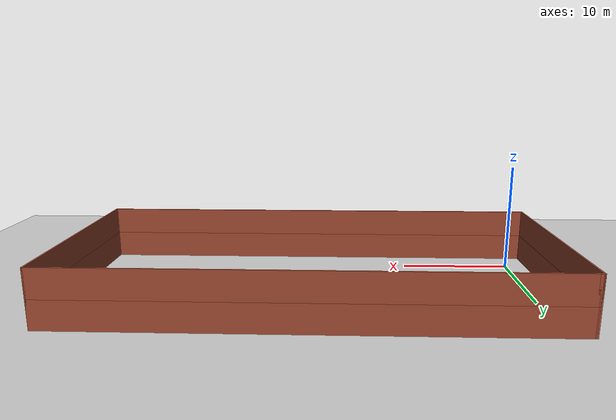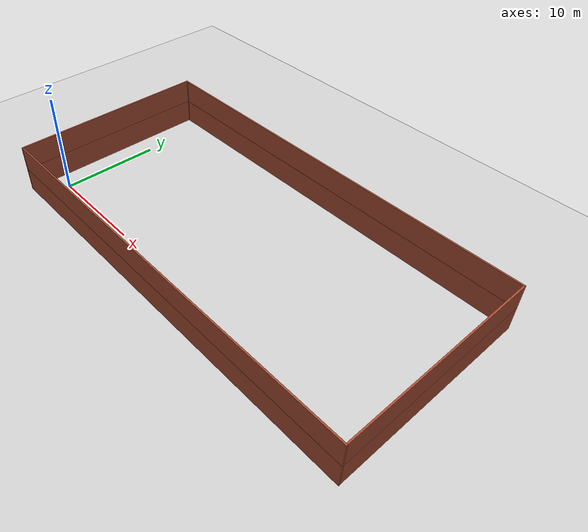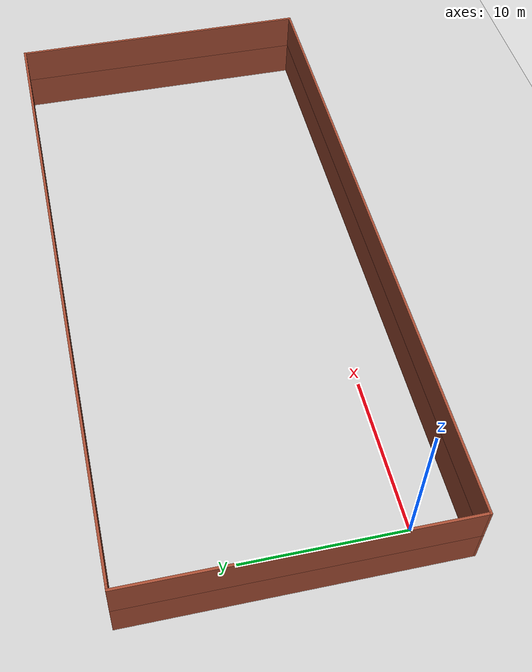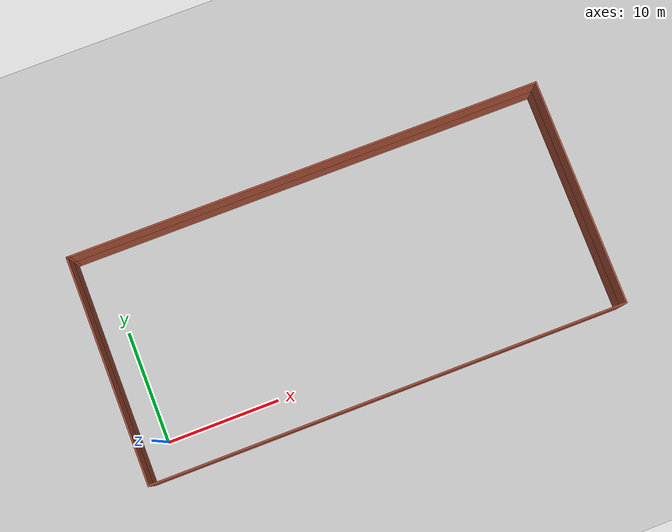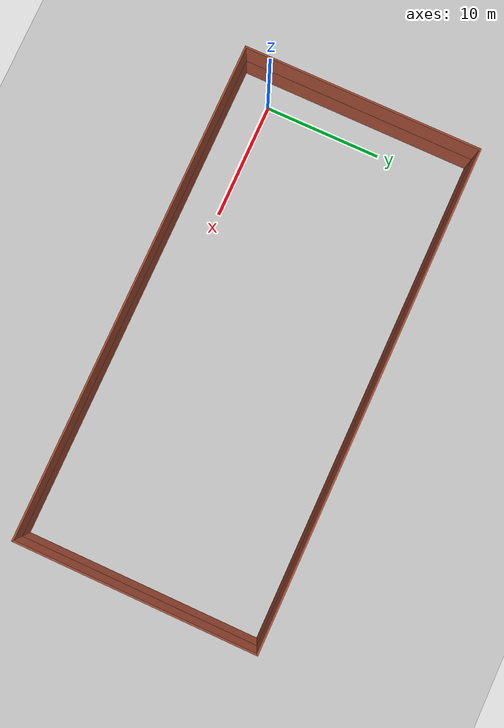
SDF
<sdf version="1.6">
 <world name="default">
  <light name="sun" type="directional">
   <pose>0 0 10 0 -0 0</pose>
   <diffuse>0.8 0.8 0.8 1</diffuse>
   <specular>0.1 0.1 0.1 1</specular>
   <attenuation>
    <range>1000</range>
    <constant>0.9</constant>
    <linear>0.01</linear>
    <quadratic>0.001</quadratic>
   </attenuation>
   <direction>-0.5 0.5 -1</direction>
  </light>
  <model name="ground_plane">
   <static>1</static>
   <link name="link">
    <collision name="collision">
     <geometry><plane><normal>0 0 1</normal><size>100 100</size></plane></geometry>
     <surface><friction><ode><mu>100</mu><mu2>50</mu2></ode></friction></surface>
    </collision>
    <visual name="visual">
     <cast_shadows>0</cast_shadows>
     <geometry><plane><normal>0 0 1</normal><size>100 100</size></plane></geometry>
     <material>
      <script><uri>file://media/materials/scripts/gazebo.material</uri><name>Gazebo/Grey</name></script>
     </material>
    </visual>
   </link>
  </model>
  <gravity>0 0 -9.8</gravity>
  <magnetic_field>6e-06 2.3e-05 -4.2e-05</magnetic_field>
  <atmosphere type="adiabatic"/>
  <physics name="default_physics" default="0" type="ode">
   <max_step_size>0.001</max_step_size>
   <real_time_factor>1</real_time_factor>
   <real_time_update_rate>1000</real_time_update_rate>
  </physics>
  <scene><ambient>0.4 0.4 0.4 1</ambient><background>0.7 0.7 0.7 1</background><shadows>1</shadows></scene>
  <spherical_coordinates>
   <surface_model>EARTH_WGS84</surface_model>
   <latitude_deg>0</latitude_deg>
   <longitude_deg>0</longitude_deg>
   <elevation>0</elevation>
   <heading_deg>0</heading_deg>
  </spherical_coordinates>
  <model name="Warehouse_walls">
   <link name="Wall_11">
    <pose>0.125 10.05 0 0 -0 0</pose>
    <visual name="Wall_11_Visual">
     <pose>0 0 1.25 0 -0 0</pose>
     <geometry><box><size>42 0.15 2.5</size></box></geometry>
     <material>
      <script><uri>file://media/materials/scripts/gazebo.material</uri><name>Gazebo/Bricks</name></script>
      <ambient>1 1 1 1</ambient>
      <diffuse>1 1 1 1</diffuse>
      <specular>0.2 0.2 0.2 1</specular>
      <emissive>0 0 0 1</emissive>
     </material>
    </visual>
    <collision name="Wall_11_Collision">
     <pose>0 0 1.25 0 -0 0</pose>
     <geometry><box><size>42 0.15 2.5</size></box></geometry>
     <surface>
      <friction>
       <ode><mu>1</mu><mu2>1</mu2><fdir1>0 0 0</fdir1><slip1>0</slip1><slip2>0</slip2></ode>
       <torsional>
        <coefficient>1</coefficient>
        <patch_radius>0</patch_radius>
        <surface_radius>0</surface_radius>
        <use_patch_radius>1</use_patch_radius>
        <ode><slip>0</slip></ode>
       </torsional>
      </friction>
      <bounce><restitution_coefficient>0</restitution_coefficient><threshold>1e+06</threshold></bounce>
      <contact>
       <collide_without_contact>0</collide_without_contact>
       <collide_without_contact_bitmask>1</collide_without_contact_bitmask>
       <collide_bitmask>1</collide_bitmask>
       <ode>
        <soft_cfm>0</soft_cfm>
        <soft_erp>0.2</soft_erp>
        <kp>1e+13</kp>
        <kd>1</kd>
        <max_vel>0.01</max_vel>
        <min_depth>0</min_depth>
       </ode>
       <bullet>
        <split_impulse>1</split_impulse>
        <split_impulse_penetration_threshold>-0.01</split_impulse_penetration_threshold>
        <soft_cfm>0</soft_cfm>
        <soft_erp>0.2</soft_erp>
        <kp>1e+13</kp>
        <kd>1</kd>
       </bullet>
      </contact>
     </surface>
    </collision>
   </link>
   <link name="Wall_12">
    <pose>21.05 0 0 0 0 -1.5708</pose>
    <visual name="Wall_12_Visual">
     <pose>0 0 1.25 0 -0 0</pose>
     <geometry><box><size>20.25 0.15 2.5</size></box></geometry>
     <material>
      <script><uri>file://media/materials/scripts/gazebo.material</uri><name>Gazebo/Bricks</name></script>
      <ambient>1 1 1 1</ambient>
      <diffuse>1 1 1 1</diffuse>
      <specular>0.2 0.2 0.2 1</specular>
      <emissive>0 0 0 1</emissive>
     </material>
    </visual>
    <collision name="Wall_12_Collision">
     <pose>0 0 1.25 0 -0 0</pose>
     <geometry><box><size>20.25 0.15 2.5</size></box></geometry>
     <surface>
      <friction>
       <ode><mu>1</mu><mu2>1</mu2><fdir1>0 0 0</fdir1><slip1>0</slip1><slip2>0</slip2></ode>
       <torsional>
        <coefficient>1</coefficient>
        <patch_radius>0</patch_radius>
        <surface_radius>0</surface_radius>
        <use_patch_radius>1</use_patch_radius>
        <ode><slip>0</slip></ode>
       </torsional>
      </friction>
      <bounce><restitution_coefficient>0</restitution_coefficient><threshold>1e+06</threshold></bounce>
      <contact>
       <collide_without_contact>0</collide_without_contact>
       <collide_without_contact_bitmask>1</collide_without_contact_bitmask>
       <collide_bitmask>1</collide_bitmask>
       <ode>
        <soft_cfm>0</soft_cfm>
        <soft_erp>0.2</soft_erp>
        <kp>1e+13</kp>
        <kd>1</kd>
        <max_vel>0.01</max_vel>
        <min_depth>0</min_depth>
       </ode>
       <bullet>
        <split_impulse>1</split_impulse>
        <split_impulse_penetration_threshold>-0.01</split_impulse_penetration_threshold>
        <soft_cfm>0</soft_cfm>
        <soft_erp>0.2</soft_erp>
        <kp>1e+13</kp>
        <kd>1</kd>
       </bullet>
      </contact>
     </surface>
    </collision>
   </link>
   <link name="Wall_13">
    <pose>0 -10.05 0 0 -0 3.14159</pose>
    <visual name="Wall_13_Visual">
     <pose>0 0 1.25 0 -0 0</pose>
     <geometry><box><size>42.25 0.15 2.5</size></box></geometry>
     <material>
      <script><uri>file://media/materials/scripts/gazebo.material</uri><name>Gazebo/Bricks</name></script>
      <ambient>1 1 1 1</ambient>
      <diffuse>1 1 1 1</diffuse>
      <specular>0.2 0.2 0.2 1</specular>
      <emissive>0 0 0 1</emissive>
     </material>
    </visual>
    <collision name="Wall_13_Collision">
     <pose>0 0 1.25 0 -0 0</pose>
     <geometry><box><size>42.25 0.15 2.5</size></box></geometry>
     <surface>
      <friction>
       <ode><mu>1</mu><mu2>1</mu2><fdir1>0 0 0</fdir1><slip1>0</slip1><slip2>0</slip2></ode>
       <torsional>
        <coefficient>1</coefficient>
        <patch_radius>0</patch_radius>
        <surface_radius>0</surface_radius>
        <use_patch_radius>1</use_patch_radius>
        <ode><slip>0</slip></ode>
       </torsional>
      </friction>
      <bounce><restitution_coefficient>0</restitution_coefficient><threshold>1e+06</threshold></bounce>
      <contact>
       <collide_without_contact>0</collide_without_contact>
       <collide_without_contact_bitmask>1</collide_without_contact_bitmask>
       <collide_bitmask>1</collide_bitmask>
       <ode>
        <soft_cfm>0</soft_cfm>
        <soft_erp>0.2</soft_erp>
        <kp>1e+13</kp>
        <kd>1</kd>
        <max_vel>0.01</max_vel>
        <min_depth>0</min_depth>
       </ode>
       <bullet>
        <split_impulse>1</split_impulse>
        <split_impulse_penetration_threshold>-0.01</split_impulse_penetration_threshold>
        <soft_cfm>0</soft_cfm>
        <soft_erp>0.2</soft_erp>
        <kp>1e+13</kp>
        <kd>1</kd>
       </bullet>
      </contact>
     </surface>
    </collision>
   </link>
   <link name="Wall_14">
    <pose>-21.05 0 0 0 -0 1.5708</pose>
    <visual name="Wall_14_Visual">
     <pose>0 0 1.25 0 -0 0</pose>
     <geometry><box><size>20.25 0.15 2.5</size></box></geometry>
     <material>
      <script><uri>file://media/materials/scripts/gazebo.material</uri><name>Gazebo/Bricks</name></script>
      <ambient>1 1 1 1</ambient>
      <diffuse>1 1 1 1</diffuse>
      <specular>0.2 0.2 0.2 1</specular>
      <emissive>0 0 0 1</emissive>
     </material>
    </visual>
    <collision name="Wall_14_Collision">
     <pose>0 0 1.25 0 -0 0</pose>
     <geometry><box><size>20.25 0.15 2.5</size></box></geometry>
     <surface>
      <friction>
       <ode><mu>1</mu><mu2>1</mu2><fdir1>0 0 0</fdir1><slip1>0</slip1><slip2>0</slip2></ode>
       <torsional>
        <coefficient>1</coefficient>
        <patch_radius>0</patch_radius>
        <surface_radius>0</surface_radius>
        <use_patch_radius>1</use_patch_radius>
        <ode><slip>0</slip></ode>
       </torsional>
      </friction>
      <bounce><restitution_coefficient>0</restitution_coefficient><threshold>1e+06</threshold></bounce>
      <contact>
       <collide_without_contact>0</collide_without_contact>
       <collide_without_contact_bitmask>1</collide_without_contact_bitmask>
       <collide_bitmask>1</collide_bitmask>
       <ode>
        <soft_cfm>0</soft_cfm>
        <soft_erp>0.2</soft_erp>
        <kp>1e+13</kp>
        <kd>1</kd>
        <max_vel>0.01</max_vel>
        <min_depth>0</min_depth>
       </ode>
       <bullet>
        <split_impulse>1</split_impulse>
        <split_impulse_penetration_threshold>-0.01</split_impulse_penetration_threshold>
        <soft_cfm>0</soft_cfm>
        <soft_erp>0.2</soft_erp>
        <kp>1e+13</kp>
        <kd>1</kd>
       </bullet>
      </contact>
     </surface>
    </collision>
   </link>
   <link name="Wall_16">
    <pose>-20.925 10.05 0 0 0 -3.14159</pose>
    <visual name="Wall_16_Visual">
     <pose>0 0 1.25 0 -0 0</pose>
     <geometry><box><size>0.4 0.15 2.5</size></box></geometry>
     <material>
      <script><uri>file://media/materials/scripts/gazebo.material</uri><name>Gazebo/Bricks</name></script>
      <ambient>1 1 1 1</ambient>
      <diffuse>1 1 1 1</diffuse>
      <specular>0.2 0.2 0.2 1</specular>
      <emissive>0 0 0 1</emissive>
     </material>
    </visual>
    <collision name="Wall_16_Collision">
     <pose>0 0 1.25 0 -0 0</pose>
     <geometry><box><size>0.4 0.15 2.5</size></box></geometry>
     <surface>
      <friction>
       <ode><mu>1</mu><mu2>1</mu2><fdir1>0 0 0</fdir1><slip1>0</slip1><slip2>0</slip2></ode>
       <torsional>
        <coefficient>1</coefficient>
        <patch_radius>0</patch_radius>
        <surface_radius>0</surface_radius>
        <use_patch_radius>1</use_patch_radius>
        <ode><slip>0</slip></ode>
       </torsional>
      </friction>
      <bounce><restitution_coefficient>0</restitution_coefficient><threshold>1e+06</threshold></bounce>
      <contact>
       <collide_without_contact>0</collide_without_contact>
       <collide_without_contact_bitmask>1</collide_without_contact_bitmask>
       <collide_bitmask>1</collide_bitmask>
       <ode>
        <soft_cfm>0</soft_cfm>
        <soft_erp>0.2</soft_erp>
        <kp>1e+13</kp>
        <kd>1</kd>
        <max_vel>0.01</max_vel>
        <min_depth>0</min_depth>
       </ode>
       <bullet>
        <split_impulse>1</split_impulse>
        <split_impulse_penetration_threshold>-0.01</split_impulse_penetration_threshold>
        <soft_cfm>0</soft_cfm>
        <soft_erp>0.2</soft_erp>
        <kp>1e+13</kp>
        <kd>1</kd>
       </bullet>
      </contact>
     </surface>
    </collision>
   </link>
   <link name="Wall_18">
    <pose>0.125 10.05 2.5 0 -0 0</pose>
    <visual name="Wall_18_Visual">
     <pose>0 0 1.25 0 -0 0</pose>
     <geometry><box><size>42 0.15 2.5</size></box></geometry>
     <material>
      <script><uri>file://media/materials/scripts/gazebo.material</uri><name>Gazebo/Bricks</name></script>
      <ambient>1 1 1 1</ambient>
      <diffuse>1 1 1 1</diffuse>
      <specular>0.2 0.2 0.2 1</specular>
      <emissive>0 0 0 1</emissive>
     </material>
    </visual>
    <collision name="Wall_18_Collision">
     <pose>0 0 1.25 0 -0 0</pose>
     <geometry><box><size>42 0.15 2.5</size></box></geometry>
     <surface>
      <friction>
       <ode><mu>1</mu><mu2>1</mu2><fdir1>0 0 0</fdir1><slip1>0</slip1><slip2>0</slip2></ode>
       <torsional>
        <coefficient>1</coefficient>
        <patch_radius>0</patch_radius>
        <surface_radius>0</surface_radius>
        <use_patch_radius>1</use_patch_radius>
        <ode><slip>0</slip></ode>
       </torsional>
      </friction>
      <bounce><restitution_coefficient>0</restitution_coefficient><threshold>1e+06</threshold></bounce>
      <contact>
       <collide_without_contact>0</collide_without_contact>
       <collide_without_contact_bitmask>1</collide_without_contact_bitmask>
       <collide_bitmask>1</collide_bitmask>
       <ode>
        <soft_cfm>0</soft_cfm>
        <soft_erp>0.2</soft_erp>
        <kp>1e+13</kp>
        <kd>1</kd>
        <max_vel>0.01</max_vel>
        <min_depth>0</min_depth>
       </ode>
       <bullet>
        <split_impulse>1</split_impulse>
        <split_impulse_penetration_threshold>-0.01</split_impulse_penetration_threshold>
        <soft_cfm>0</soft_cfm>
        <soft_erp>0.2</soft_erp>
        <kp>1e+13</kp>
        <kd>1</kd>
       </bullet>
      </contact>
     </surface>
    </collision>
   </link>
   <link name="Wall_19">
    <pose>21.05 0 2.5 0 0 -1.5708</pose>
    <visual name="Wall_19_Visual">
     <pose>0 0 1.25 0 -0 0</pose>
     <geometry><box><size>20.25 0.15 2.5</size></box></geometry>
     <material>
      <script><uri>file://media/materials/scripts/gazebo.material</uri><name>Gazebo/Bricks</name></script>
      <ambient>1 1 1 1</ambient>
      <diffuse>1 1 1 1</diffuse>
      <specular>0.2 0.2 0.2 1</specular>
      <emissive>0 0 0 1</emissive>
     </material>
    </visual>
    <collision name="Wall_19_Collision">
     <pose>0 0 1.25 0 -0 0</pose>
     <geometry><box><size>20.25 0.15 2.5</size></box></geometry>
     <surface>
      <friction>
       <ode><mu>1</mu><mu2>1</mu2><fdir1>0 0 0</fdir1><slip1>0</slip1><slip2>0</slip2></ode>
       <torsional>
        <coefficient>1</coefficient>
        <patch_radius>0</patch_radius>
        <surface_radius>0</surface_radius>
        <use_patch_radius>1</use_patch_radius>
        <ode><slip>0</slip></ode>
       </torsional>
      </friction>
      <bounce><restitution_coefficient>0</restitution_coefficient><threshold>1e+06</threshold></bounce>
      <contact>
       <collide_without_contact>0</collide_without_contact>
       <collide_without_contact_bitmask>1</collide_without_contact_bitmask>
       <collide_bitmask>1</collide_bitmask>
       <ode>
        <soft_cfm>0</soft_cfm>
        <soft_erp>0.2</soft_erp>
        <kp>1e+13</kp>
        <kd>1</kd>
        <max_vel>0.01</max_vel>
        <min_depth>0</min_depth>
       </ode>
       <bullet>
        <split_impulse>1</split_impulse>
        <split_impulse_penetration_threshold>-0.01</split_impulse_penetration_threshold>
        <soft_cfm>0</soft_cfm>
        <soft_erp>0.2</soft_erp>
        <kp>1e+13</kp>
        <kd>1</kd>
       </bullet>
      </contact>
     </surface>
    </collision>
   </link>
   <link name="Wall_20">
    <pose>0 -10.05 2.5 0 -0 3.14159</pose>
    <visual name="Wall_20_Visual">
     <pose>0 0 1.25 0 -0 0</pose>
     <geometry><box><size>42.25 0.15 2.5</size></box></geometry>
     <material>
      <script><uri>file://media/materials/scripts/gazebo.material</uri><name>Gazebo/Bricks</name></script>
      <ambient>1 1 1 1</ambient>
      <diffuse>1 1 1 1</diffuse>
      <specular>0.2 0.2 0.2 1</specular>
      <emissive>0 0 0 1</emissive>
     </material>
    </visual>
    <collision name="Wall_20_Collision">
     <pose>0 0 1.25 0 -0 0</pose>
     <geometry><box><size>42.25 0.15 2.5</size></box></geometry>
     <surface>
      <friction>
       <ode><mu>1</mu><mu2>1</mu2><fdir1>0 0 0</fdir1><slip1>0</slip1><slip2>0</slip2></ode>
       <torsional>
        <coefficient>1</coefficient>
        <patch_radius>0</patch_radius>
        <surface_radius>0</surface_radius>
        <use_patch_radius>1</use_patch_radius>
        <ode><slip>0</slip></ode>
       </torsional>
      </friction>
      <bounce><restitution_coefficient>0</restitution_coefficient><threshold>1e+06</threshold></bounce>
      <contact>
       <collide_without_contact>0</collide_without_contact>
       <collide_without_contact_bitmask>1</collide_without_contact_bitmask>
       <collide_bitmask>1</collide_bitmask>
       <ode>
        <soft_cfm>0</soft_cfm>
        <soft_erp>0.2</soft_erp>
        <kp>1e+13</kp>
        <kd>1</kd>
        <max_vel>0.01</max_vel>
        <min_depth>0</min_depth>
       </ode>
       <bullet>
        <split_impulse>1</split_impulse>
        <split_impulse_penetration_threshold>-0.01</split_impulse_penetration_threshold>
        <soft_cfm>0</soft_cfm>
        <soft_erp>0.2</soft_erp>
        <kp>1e+13</kp>
        <kd>1</kd>
       </bullet>
      </contact>
     </surface>
    </collision>
   </link>
   <link name="Wall_21">
    <pose>-21.05 0 2.5 0 -0 1.5708</pose>
    <visual name="Wall_21_Visual">
     <pose>0 0 1.25 0 -0 0</pose>
     <geometry><box><size>20.25 0.15 2.5</size></box></geometry>
     <material>
      <script><uri>file://media/materials/scripts/gazebo.material</uri><name>Gazebo/Bricks</name></script>
      <ambient>1 1 1 1</ambient>
      <diffuse>1 1 1 1</diffuse>
      <specular>0.2 0.2 0.2 1</specular>
      <emissive>0 0 0 1</emissive>
     </material>
    </visual>
    <collision name="Wall_21_Collision">
     <pose>0 0 1.25 0 -0 0</pose>
     <geometry><box><size>20.25 0.15 2.5</size></box></geometry>
     <surface>
      <friction>
       <ode><mu>1</mu><mu2>1</mu2><fdir1>0 0 0</fdir1><slip1>0</slip1><slip2>0</slip2></ode>
       <torsional>
        <coefficient>1</coefficient>
        <patch_radius>0</patch_radius>
        <surface_radius>0</surface_radius>
        <use_patch_radius>1</use_patch_radius>
        <ode><slip>0</slip></ode>
       </torsional>
      </friction>
      <bounce><restitution_coefficient>0</restitution_coefficient><threshold>1e+06</threshold></bounce>
      <contact>
       <collide_without_contact>0</collide_without_contact>
       <collide_without_contact_bitmask>1</collide_without_contact_bitmask>
       <collide_bitmask>1</collide_bitmask>
       <ode>
        <soft_cfm>0</soft_cfm>
        <soft_erp>0.2</soft_erp>
        <kp>1e+13</kp>
        <kd>1</kd>
        <max_vel>0.01</max_vel>
        <min_depth>0</min_depth>
       </ode>
       <bullet>
        <split_impulse>1</split_impulse>
        <split_impulse_penetration_threshold>-0.01</split_impulse_penetration_threshold>
        <soft_cfm>0</soft_cfm>
        <soft_erp>0.2</soft_erp>
        <kp>1e+13</kp>
        <kd>1</kd>
       </bullet>
      </contact>
     </surface>
    </collision>
   </link>
   <link name="Wall_22">
    <pose>-20.925 10.05 2.5 0 0 -3.14159</pose>
    <visual name="Wall_22_Visual">
     <pose>0 0 1.25 0 -0 0</pose>
     <geometry><box><size>0.4 0.15 2.5</size></box></geometry>
     <material>
      <script><uri>file://media/materials/scripts/gazebo.material</uri><name>Gazebo/Bricks</name></script>
      <ambient>1 1 1 1</ambient>
      <diffuse>1 1 1 1</diffuse>
      <specular>0.2 0.2 0.2 1</specular>
      <emissive>0 0 0 1</emissive>
     </material>
    </visual>
    <collision name="Wall_22_Collision">
     <pose>0 0 1.25 0 -0 0</pose>
     <geometry><box><size>0.4 0.15 2.5</size></box></geometry>
     <surface>
      <friction>
       <ode><mu>1</mu><mu2>1</mu2><fdir1>0 0 0</fdir1><slip1>0</slip1><slip2>0</slip2></ode>
       <torsional>
        <coefficient>1</coefficient>
        <patch_radius>0</patch_radius>
        <surface_radius>0</surface_radius>
        <use_patch_radius>1</use_patch_radius>
        <ode><slip>0</slip></ode>
       </torsional>
      </friction>
      <bounce><restitution_coefficient>0</restitution_coefficient><threshold>1e+06</threshold></bounce>
      <contact>
       <collide_without_contact>0</collide_without_contact>
       <collide_without_contact_bitmask>1</collide_without_contact_bitmask>
       <collide_bitmask>1</collide_bitmask>
       <ode>
        <soft_cfm>0</soft_cfm>
        <soft_erp>0.2</soft_erp>
        <kp>1e+13</kp>
        <kd>1</kd>
        <max_vel>0.01</max_vel>
        <min_depth>0</min_depth>
       </ode>
       <bullet>
        <split_impulse>1</split_impulse>
        <split_impulse_penetration_threshold>-0.01</split_impulse_penetration_threshold>
        <soft_cfm>0</soft_cfm>
        <soft_erp>0.2</soft_erp>
        <kp>1e+13</kp>
        <kd>1</kd>
       </bullet>
      </contact>
     </surface>
    </collision>
   </link>
   <static>1</static>
   <pose>18.919 7.04862 0 0 -0 0</pose>
  </model>
 </world>
</sdf>
